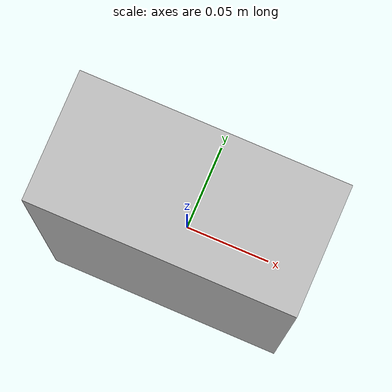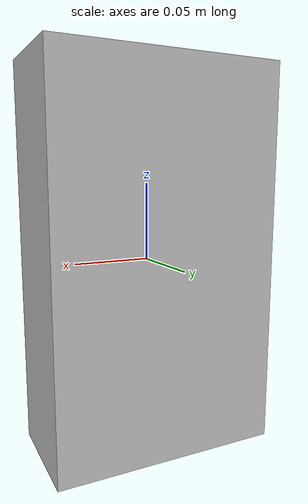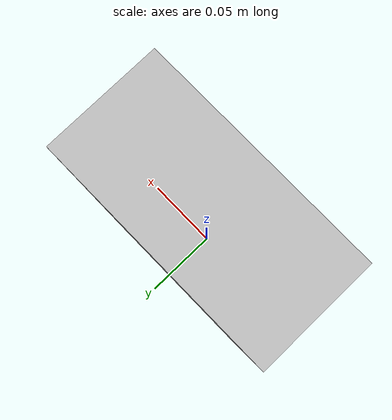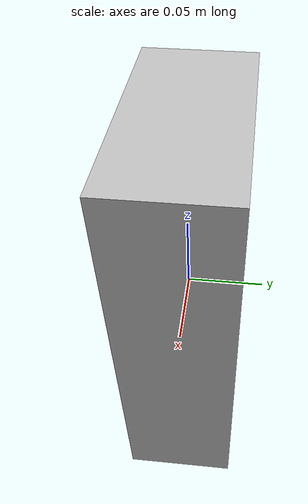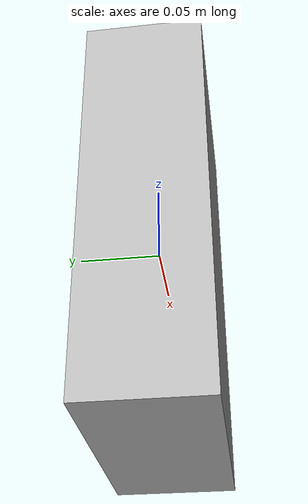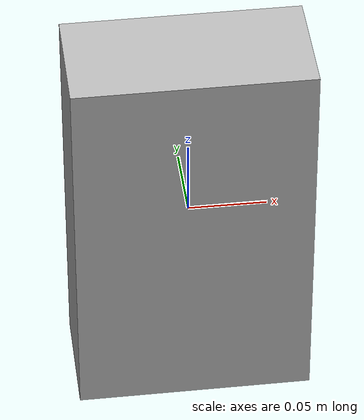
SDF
<?xml version='1.0'?>
<sdf version='1.7'>
  <model name='provaModello'>
    <link name='link_0'>
      <inertial>
        <mass>0.00277844</mass>
        <inertia>
          <ixx>1.6006e-05</ixx>
          <ixy>0</ixy>
          <ixz>0</ixz>
          <iyy>2.00274e-05</iyy>
          <iyz>0</iyz>
          <izz>6.48502e-06</izz>
        </inertia>
        <pose>0 0 0 0 -0 0</pose>
      </inertial>
      <pose>0 -0 0 0 -0 0</pose>
      <visual name='visual'>
        <pose>0 0 0 0 -0 0</pose>
        <geometry>
          <box>
            <size>0.150627 0.072939 0.252605</size>
          </box>
        </geometry>
        <material>
        <specular> 0.1 0.1 0.1 1 </specular>
          <lighting>1</lighting>
          <script>
            <uri>model://provaModello/materials/scripts</uri>
             <uri>model://provaModello/materials/textures</uri>
            <name>orangejuice/Diffuse</name>
          </script>
          <shader type='pixel'/>
        </material>
        <transparency>0</transparency>
        <cast_shadows>1</cast_shadows>
      </visual>
      <collision name='collision'>
        <laser_retro>0</laser_retro>
        <max_contacts>10</max_contacts>
        <pose>0 0 0 0 -0 0</pose>
        <geometry>
          <box>
            <size>0.150627 0.072939 0.252605</size>
          </box>
        </geometry>
        <surface>
          <friction>
            <ode>
              <mu>1</mu>
              <mu2>1</mu2>
              <fdir1>0 0 0</fdir1>
              <slip1>0</slip1>
              <slip2>0</slip2>
            </ode>
            <torsional>
              <coefficient>1</coefficient>
              <patch_radius>0</patch_radius>
              <surface_radius>0</surface_radius>
              <use_patch_radius>1</use_patch_radius>
              <ode>
                <slip>0</slip>
              </ode>
            </torsional>
          </friction>
          <bounce>
            <restitution_coefficient>0</restitution_coefficient>
            <threshold>1e+06</threshold>
          </bounce>
          <contact>
            <collide_without_contact>0</collide_without_contact>
            <collide_without_contact_bitmask>1</collide_without_contact_bitmask>
            <collide_bitmask>1</collide_bitmask>
            <ode>
              <soft_cfm>0</soft_cfm>
              <soft_erp>0.2</soft_erp>
              <kp>1e+13</kp>
              <kd>1</kd>
              <max_vel>0.01</max_vel>
              <min_depth>0</min_depth>
            </ode>
            <bullet>
              <split_impulse>1</split_impulse>
              <split_impulse_penetration_threshold>-0.01</split_impulse_penetration_threshold>
              <soft_cfm>0</soft_cfm>
              <soft_erp>0.2</soft_erp>
              <kp>1e+13</kp>
              <kd>1</kd>
            </bullet>
          </contact>
        </surface>
      </collision>
    </link>
    <static>0</static>
    <allow_auto_disable>1</allow_auto_disable>
  </model>
</sdf>
